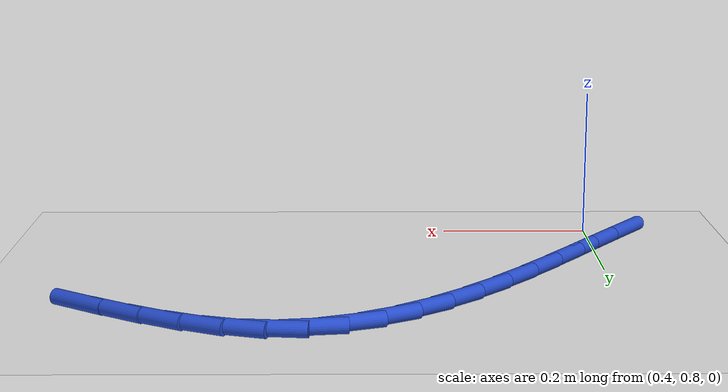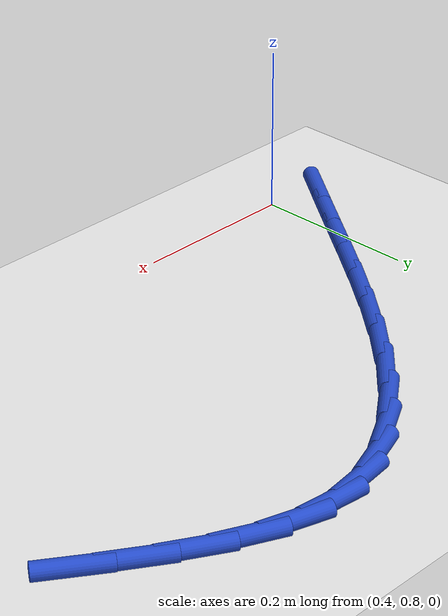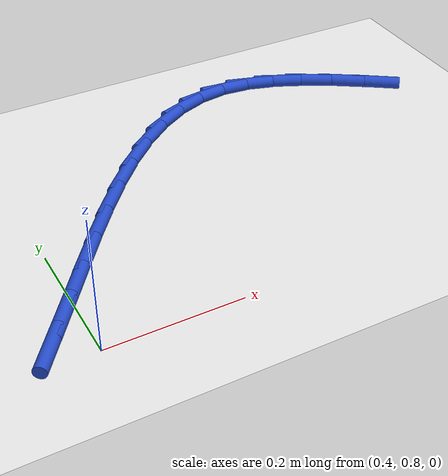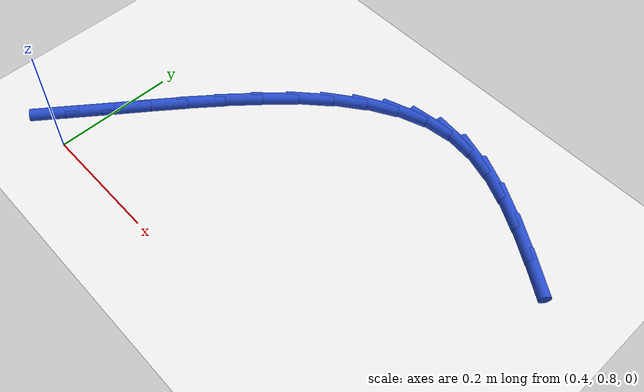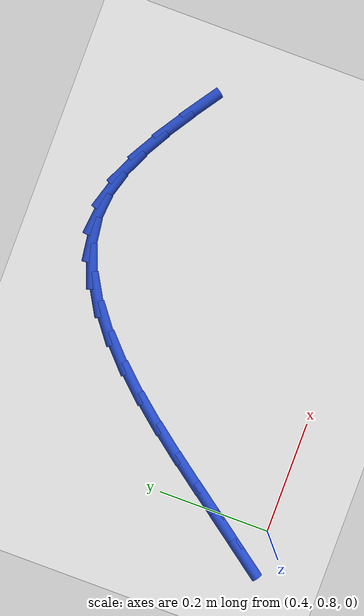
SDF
<sdf version="1.6">
 <world name="default">
  <model name="ground_plane">
   <static>1</static>
   <link name="link">
    <collision name="collision">
     <geometry><plane><normal>0 0 1</normal><size>100 100</size></plane></geometry>
     <surface><friction><ode><mu>100</mu><mu2>50</mu2></ode></friction></surface>
    </collision>
    <visual name="visual">
     <cast_shadows>0</cast_shadows>
     <geometry><plane><normal>0 0 1</normal><size>100 100</size></plane></geometry>
     <material>
      <script><uri>file://media/materials/scripts/gazebo.material</uri><name>Gazebo/WhiteGlow</name></script>
     </material>
    </visual>
   </link>
  </model>
  <model name="line">
   <link name="link_17">
    <pose>0.3435330995836438 0.8229628837644336 0.01 0 1.57 0.9359165957944917</pose>
    <collision name="collision">
     <geometry><cylinder><radius>0.01</radius><length>0.08</length></cylinder></geometry>
    </collision>
    <visual name="visual">
     <material>
      <script><name>Gazebo/Blue</name><uri>file://media/materials/scripts/gazebo.material</uri></script>
     </material>
     <geometry><cylinder><radius>0.01</radius><length>0.08</length></cylinder></geometry>
    </visual>
   </link>
   <link name="link_18">
    <pose>0.37777854353357204 0.8694531527270976 0.01 0 1.57 0.9385876809876145</pose>
    <collision name="collision">
     <geometry><cylinder><radius>0.01</radius><length>0.08</length></cylinder></geometry>
    </collision>
    <visual name="visual">
     <material>
      <script><name>Gazebo/Blue</name><uri>file://media/materials/scripts/gazebo.material</uri></script>
     </material>
     <geometry><cylinder><radius>0.01</radius><length>0.08</length></cylinder></geometry>
    </visual>
   </link>
   <link name="link_19">
    <pose>0.41298937666527874 0.9175223545100621 0.01 0 1.57 0.9400298390118881</pose>
    <collision name="collision">
     <geometry><cylinder><radius>0.01</radius><length>0.08</length></cylinder></geometry>
    </collision>
    <visual name="visual">
     <material>
      <script><name>Gazebo/Blue</name><uri>file://media/materials/scripts/gazebo.material</uri></script>
     </material>
     <geometry><cylinder><radius>0.01</radius><length>0.08</length></cylinder></geometry>
    </visual>
   </link>
   <link name="link_20">
    <pose>0.4491135422606998 0.9669879065477065 0.01 0 1.57 0.9302275122954669</pose>
    <collision name="collision">
     <geometry><cylinder><radius>0.01</radius><length>0.08</length></cylinder></geometry>
    </collision>
    <visual name="visual">
     <material>
      <script><name>Gazebo/Blue</name><uri>file://media/materials/scripts/gazebo.material</uri></script>
     </material>
     <geometry><cylinder><radius>0.01</radius><length>0.08</length></cylinder></geometry>
    </visual>
   </link>
   <link name="link_21">
    <pose>0.4861623459393318 1.016689269011883 0.01 0 1.57 0.9079745108533863</pose>
    <collision name="collision">
     <geometry><cylinder><radius>0.01</radius><length>0.08</length></cylinder></geometry>
    </collision>
    <visual name="visual">
     <material>
      <script><name>Gazebo/Blue</name><uri>file://media/materials/scripts/gazebo.material</uri></script>
     </material>
     <geometry><cylinder><radius>0.01</radius><length>0.08</length></cylinder></geometry>
    </visual>
   </link>
   <link name="link_22">
    <pose>0.5241541489011883 1.0653570036897888 0.01 0 1.57 0.8720499910200441</pose>
    <collision name="collision">
     <geometry><cylinder><radius>0.01</radius><length>0.08</length></cylinder></geometry>
    </collision>
    <visual name="visual">
     <material>
      <script><name>Gazebo/Blue</name><uri>file://media/materials/scripts/gazebo.material</uri></script>
     </material>
     <geometry><cylinder><radius>0.01</radius><length>0.08</length></cylinder></geometry>
    </visual>
   </link>
   <link name="link_23">
    <pose>0.5631073123462832 1.1117216723686225 0.01 0 1.57 0.8199480555947248</pose>
    <collision name="collision">
     <geometry><cylinder><radius>0.01</radius><length>0.08</length></cylinder></geometry>
    </collision>
    <visual name="visual">
     <material>
      <script><name>Gazebo/Blue</name><uri>file://media/materials/scripts/gazebo.material</uri></script>
     </material>
     <geometry><cylinder><radius>0.01</radius><length>0.08</length></cylinder></geometry>
    </visual>
   </link>
   <link name="link_24">
    <pose>0.6030401974746302 1.1545138368355818 0.01 0 1.57 0.747628342369547</pose>
    <collision name="collision">
     <geometry><cylinder><radius>0.01</radius><length>0.08</length></cylinder></geometry>
    </collision>
    <visual name="visual">
     <material>
      <script><name>Gazebo/Blue</name><uri>file://media/materials/scripts/gazebo.material</uri></script>
     </material>
     <geometry><cylinder><radius>0.01</radius><length>0.08</length></cylinder></geometry>
    </visual>
   </link>
   <link name="link_25">
    <pose>0.6439711654862428 1.192464058877864 0.01 0 1.57 0.6492476990210018</pose>
    <collision name="collision">
     <geometry><cylinder><radius>0.01</radius><length>0.08</length></cylinder></geometry>
    </collision>
    <visual name="visual">
     <material>
      <script><name>Gazebo/Blue</name><uri>file://media/materials/scripts/gazebo.material</uri></script>
     </material>
     <geometry><cylinder><radius>0.01</radius><length>0.08</length></cylinder></geometry>
    </visual>
   </link>
   <link name="link_26">
    <pose>0.685918577581135 1.2243029002826675 0.01 0 1.57 0.5173334805820249</pose>
    <collision name="collision">
     <geometry><cylinder><radius>0.01</radius><length>0.08</length></cylinder></geometry>
    </collision>
    <visual name="visual">
     <material>
      <script><name>Gazebo/Blue</name><uri>file://media/materials/scripts/gazebo.material</uri></script>
     </material>
     <geometry><cylinder><radius>0.01</radius><length>0.08</length></cylinder></geometry>
    </visual>
   </link>
   <link name="link_27">
    <pose>0.7289007949593205 1.2487609228371903 0.01 0 1.57 0.34465117395034406</pose>
    <collision name="collision">
     <geometry><cylinder><radius>0.01</radius><length>0.08</length></cylinder></geometry>
    </collision>
    <visual name="visual">
     <material>
      <script><name>Gazebo/Blue</name><uri>file://media/materials/scripts/gazebo.material</uri></script>
     </material>
     <geometry><cylinder><radius>0.01</radius><length>0.08</length></cylinder></geometry>
    </visual>
   </link>
   <link name="link_28">
    <pose>0.7729361788208124 1.264568688328629 0.01 0 1.57 0.1298019381787671</pose>
    <collision name="collision">
     <geometry><cylinder><radius>0.01</radius><length>0.08</length></cylinder></geometry>
    </collision>
    <visual name="visual">
     <material>
      <script><name>Gazebo/Blue</name><uri>file://media/materials/scripts/gazebo.material</uri></script>
     </material>
     <geometry><cylinder><radius>0.01</radius><length>0.08</length></cylinder></geometry>
    </visual>
   </link>
   <link name="link_29">
    <pose>0.8180430903656257 1.2704567585441826 0.01 0 1.57 -0.10599912128111598</pose>
    <collision name="collision">
     <geometry><cylinder><radius>0.01</radius><length>0.08</length></cylinder></geometry>
    </collision>
    <visual name="visual">
     <material>
      <script><name>Gazebo/Blue</name><uri>file://media/materials/scripts/gazebo.material</uri></script>
     </material>
     <geometry><cylinder><radius>0.01</radius><length>0.08</length></cylinder></geometry>
    </visual>
   </link>
   <link name="link_30">
    <pose>0.8642249118490284 1.265543109299017 0.01 0 1.57 -0.29926819437853347</pose>
    <collision name="collision">
     <geometry><cylinder><radius>0.01</radius><length>0.08</length></cylinder></geometry>
    </collision>
    <visual name="visual">
     <material>
      <script><name>Gazebo/Blue</name><uri>file://media/materials/scripts/gazebo.material</uri></script>
     </material>
     <geometry><cylinder><radius>0.01</radius><length>0.08</length></cylinder></geometry>
    </visual>
   </link>
   <link name="link_31">
    <pose>0.91140613750861 1.2509860687300087 0.01 0 1.57 -0.43553050890431566</pose>
    <collision name="collision">
     <geometry><cylinder><radius>0.01</radius><length>0.08</length></cylinder></geometry>
    </collision>
    <visual name="visual">
     <material>
      <script><name>Gazebo/Blue</name><uri>file://media/materials/scripts/gazebo.material</uri></script>
     </material>
     <geometry><cylinder><radius>0.01</radius><length>0.08</length></cylinder></geometry>
    </visual>
   </link>
   <link name="link_32">
    <pose>0.9594853838971462 1.2286132629973017 0.01 0 1.57 -0.525775889379785</pose>
    <collision name="collision">
     <geometry><cylinder><radius>0.01</radius><length>0.08</length></cylinder></geometry>
    </collision>
    <visual name="visual">
     <material>
      <script><name>Gazebo/Blue</name><uri>file://media/materials/scripts/gazebo.material</uri></script>
     </material>
     <geometry><cylinder><radius>0.01</radius><length>0.08</length></cylinder></geometry>
    </visual>
   </link>
   <link name="link_33">
    <pose>1.0083612523977028 1.200252710608984 0.01 0 1.57 -0.580604778284598</pose>
    <collision name="collision">
     <geometry><cylinder><radius>0.01</radius><length>0.08</length></cylinder></geometry>
    </collision>
    <visual name="visual">
     <material>
      <script><name>Gazebo/Blue</name><uri>file://media/materials/scripts/gazebo.material</uri></script>
     </material>
     <geometry><cylinder><radius>0.01</radius><length>0.08</length></cylinder></geometry>
    </visual>
   </link>
   <link name="link_34">
    <pose>1.0579323443933457 1.1677324300731422 0.01 0 1.57 -0.6071926233033701</pose>
    <collision name="collision">
     <geometry><cylinder><radius>0.01</radius><length>0.08</length></cylinder></geometry>
    </collision>
    <visual name="visual">
     <material>
      <script><name>Gazebo/Blue</name><uri>file://media/materials/scripts/gazebo.material</uri></script>
     </material>
     <geometry><cylinder><radius>0.01</radius><length>0.08</length></cylinder></geometry>
    </visual>
   </link>
  </model>
 </world>
</sdf>
